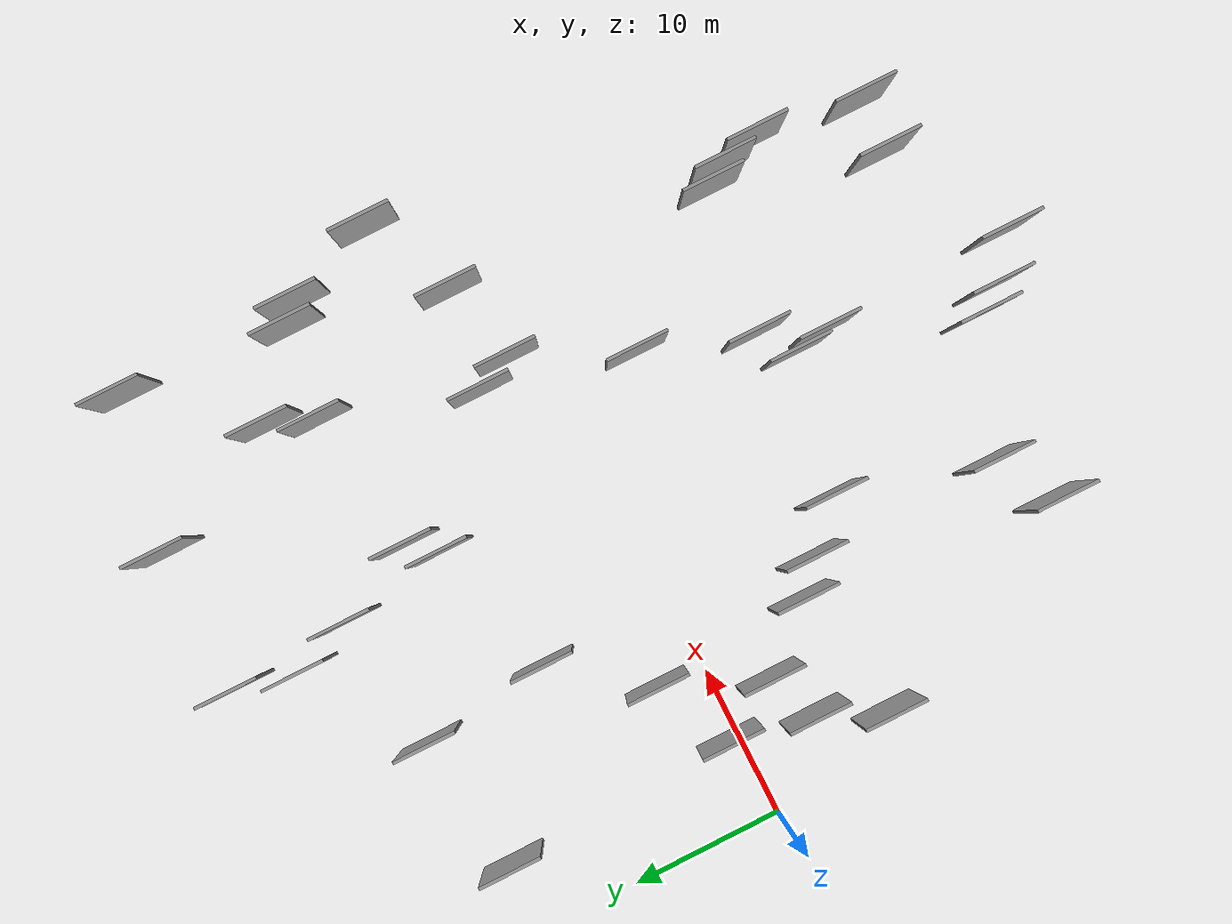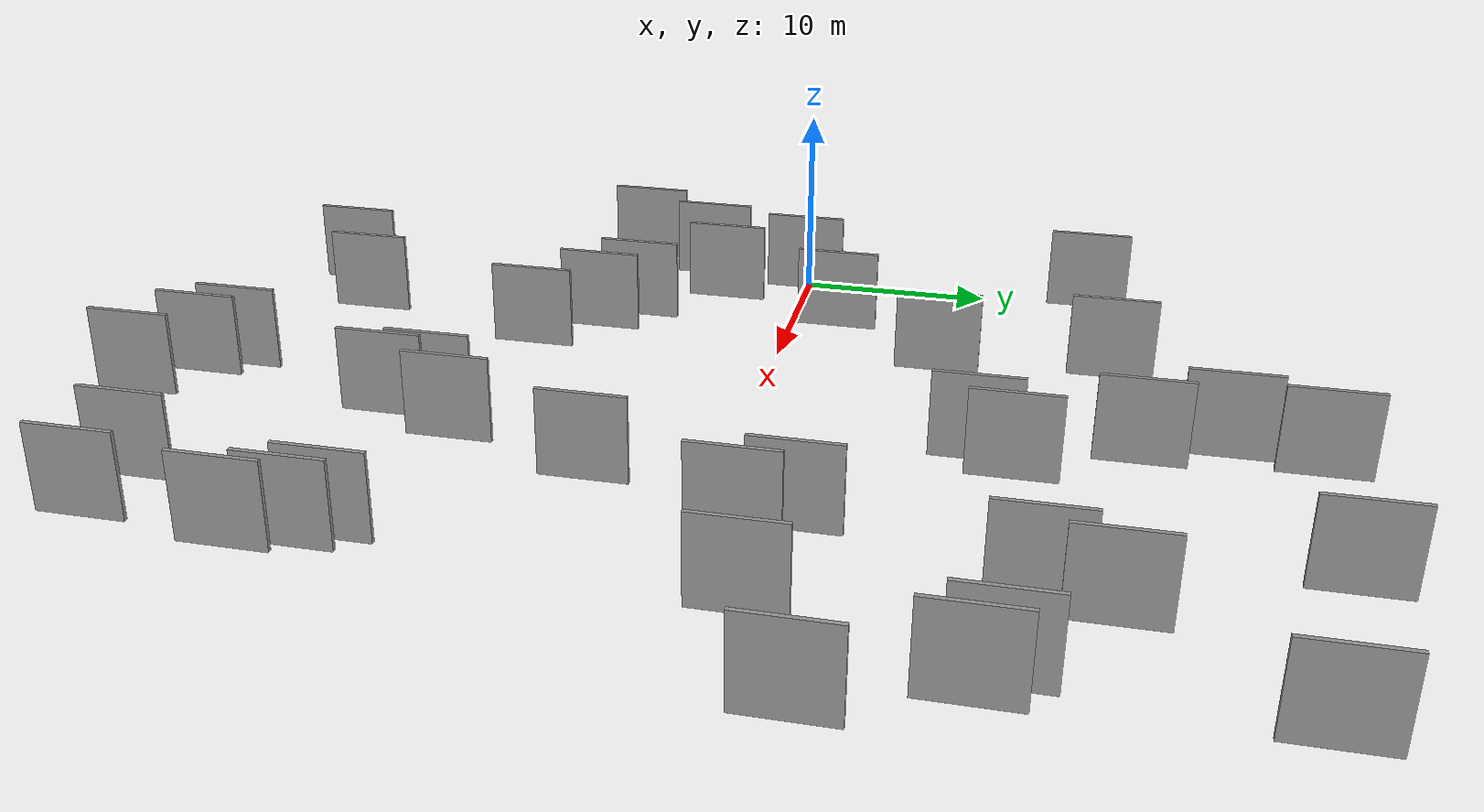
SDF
<sdf version="1.6">
 <world name="default">
  <scene>
   <sky><clouds><speed>12</speed></clouds></sky>
   <ambient>0.4 0.4 0.4 1</ambient>
   <background>0.7 0.7 0.7 1</background>
   <shadows>1</shadows>
  </scene>
  <gravity>0 0 -9.8066</gravity>
  <magnetic_field>6e-06 2.3e-05 -4.2e-05</magnetic_field>
  <physics default="0" name="default_physics" type="ode">
   <ode>
    <solver>
     <type>quick</type>
     <iters>10</iters>
     <sor>1.0</sor>
     <use_dynamic_moi_rescaling>0</use_dynamic_moi_rescaling>
    </solver>
    <constraints>
     <cfm>0</cfm>
     <erp>0.2</erp>
     <contact_max_correcting_vel>100</contact_max_correcting_vel>
     <contact_surface_layer>0.001</contact_surface_layer>
    </constraints>
   </ode>
   <max_step_size>0.004</max_step_size>
   <real_time_factor>1</real_time_factor>
   <real_time_update_rate>250</real_time_update_rate>
  </physics>
  <light name="sun" type="directional">
   <pose>0 0 10 0 0 0</pose>
   <diffuse>0.8 0.8 0.8 1</diffuse>
   <specular>0.2 0.2 0.2 1</specular>
   <attenuation>
    <range>1000</range>
    <constant>0.9</constant>
    <linear>0.01</linear>
    <quadratic>0.001</quadratic>
   </attenuation>
   <direction>-0.5 0.1 -0.9</direction>
  </light>
  <model name="grey_wall_1">
   <static>1</static>
   <pose>32.7581 2.3546 2.5 0.000000 0.000000 1.570796</pose>
   <link name="link">
    <pose>0 0 2.00 0 0 0</pose>
    <collision name="collision"><geometry><box><size>4.00 0.2 4.00</size></box></geometry></collision>
    <visual name="visual">
     <cast_shadows>0</cast_shadows>
     <geometry><box><size>4.00 0.2 4.00</size></box></geometry>
     <material>
      <script>
       <uri>model://grey_wall/materials/scripts</uri>
       <uri>model://grey_wall/materials/textures</uri>
       <name>vrc/grey_wall</name>
      </script>
     </material>
    </visual>
   </link>
  </model>
  <model name="grey_wall_2">
   <static>1</static>
   <pose>8.6562 -3.0491 2.5 0.000000 0.000000 1.570796</pose>
   <link name="link">
    <pose>0 0 2.00 0 0 0</pose>
    <collision name="collision"><geometry><box><size>4.00 0.2 4.00</size></box></geometry></collision>
    <visual name="visual">
     <cast_shadows>0</cast_shadows>
     <geometry><box><size>4.00 0.2 4.00</size></box></geometry>
     <material>
      <script>
       <uri>model://grey_wall/materials/scripts</uri>
       <uri>model://grey_wall/materials/textures</uri>
       <name>vrc/grey_wall</name>
      </script>
     </material>
    </visual>
   </link>
  </model>
  <model name="grey_wall_3">
   <static>1</static>
   <pose>24.1383 11.1364 2.5 0.000000 0.000000 1.570796</pose>
   <link name="link">
    <pose>0 0 2.00 0 0 0</pose>
    <collision name="collision"><geometry><box><size>4.00 0.2 4.00</size></box></geometry></collision>
    <visual name="visual">
     <cast_shadows>0</cast_shadows>
     <geometry><box><size>4.00 0.2 4.00</size></box></geometry>
     <material>
      <script>
       <uri>model://grey_wall/materials/scripts</uri>
       <uri>model://grey_wall/materials/textures</uri>
       <name>vrc/grey_wall</name>
      </script>
     </material>
    </visual>
   </link>
  </model>
  <model name="grey_wall_4">
   <static>1</static>
   <pose>25.6784 -15.3537 2.5 0.000000 0.000000 1.570796</pose>
   <link name="link">
    <pose>0 0 2.00 0 0 0</pose>
    <collision name="collision"><geometry><box><size>4.00 0.2 4.00</size></box></geometry></collision>
    <visual name="visual">
     <cast_shadows>0</cast_shadows>
     <geometry><box><size>4.00 0.2 4.00</size></box></geometry>
     <material>
      <script>
       <uri>model://grey_wall/materials/scripts</uri>
       <uri>model://grey_wall/materials/textures</uri>
       <name>vrc/grey_wall</name>
      </script>
     </material>
    </visual>
   </link>
  </model>
  <model name="grey_wall_5">
   <static>1</static>
   <pose>23.4787 -25.5595 2.5 0.000000 0.000000 1.570796</pose>
   <link name="link">
    <pose>0 0 2.00 0 0 0</pose>
    <collision name="collision"><geometry><box><size>4.00 0.2 4.00</size></box></geometry></collision>
    <visual name="visual">
     <cast_shadows>0</cast_shadows>
     <geometry><box><size>4.00 0.2 4.00</size></box></geometry>
     <material>
      <script>
       <uri>model://grey_wall/materials/scripts</uri>
       <uri>model://grey_wall/materials/textures</uri>
       <name>vrc/grey_wall</name>
      </script>
     </material>
    </visual>
   </link>
  </model>
  <model name="grey_wall_6">
   <static>1</static>
   <pose>37.9805 -16.8099 2.5 0.000000 0.000000 1.570796</pose>
   <link name="link">
    <pose>0 0 2.00 0 0 0</pose>
    <collision name="collision"><geometry><box><size>4.00 0.2 4.00</size></box></geometry></collision>
    <visual name="visual">
     <cast_shadows>0</cast_shadows>
     <geometry><box><size>4.00 0.2 4.00</size></box></geometry>
     <material>
      <script>
       <uri>model://grey_wall/materials/scripts</uri>
       <uri>model://grey_wall/materials/textures</uri>
       <name>vrc/grey_wall</name>
      </script>
     </material>
    </visual>
   </link>
  </model>
  <model name="grey_wall_7">
   <static>1</static>
   <pose>25.4953 12.7898 2.5 0.000000 0.000000 1.570796</pose>
   <link name="link">
    <pose>0 0 2.00 0 0 0</pose>
    <collision name="collision"><geometry><box><size>4.00 0.2 4.00</size></box></geometry></collision>
    <visual name="visual">
     <cast_shadows>0</cast_shadows>
     <geometry><box><size>4.00 0.2 4.00</size></box></geometry>
     <material>
      <script>
       <uri>model://grey_wall/materials/scripts</uri>
       <uri>model://grey_wall/materials/textures</uri>
       <name>vrc/grey_wall</name>
      </script>
     </material>
    </visual>
   </link>
  </model>
  <model name="grey_wall_8">
   <static>1</static>
   <pose>5.5047 -4.4223 2.5 0.000000 0.000000 1.570796</pose>
   <link name="link">
    <pose>0 0 2.00 0 0 0</pose>
    <collision name="collision"><geometry><box><size>4.00 0.2 4.00</size></box></geometry></collision>
    <visual name="visual">
     <cast_shadows>0</cast_shadows>
     <geometry><box><size>4.00 0.2 4.00</size></box></geometry>
     <material>
      <script>
       <uri>model://grey_wall/materials/scripts</uri>
       <uri>model://grey_wall/materials/textures</uri>
       <name>vrc/grey_wall</name>
      </script>
     </material>
    </visual>
   </link>
  </model>
  <model name="grey_wall_9">
   <static>1</static>
   <pose>6.4221 0.7579 2.5 0.000000 0.000000 1.570796</pose>
   <link name="link">
    <pose>0 0 2.00 0 0 0</pose>
    <collision name="collision"><geometry><box><size>4.00 0.2 4.00</size></box></geometry></collision>
    <visual name="visual">
     <cast_shadows>0</cast_shadows>
     <geometry><box><size>4.00 0.2 4.00</size></box></geometry>
     <material>
      <script>
       <uri>model://grey_wall/materials/scripts</uri>
       <uri>model://grey_wall/materials/textures</uri>
       <name>vrc/grey_wall</name>
      </script>
     </material>
    </visual>
   </link>
  </model>
  <model name="grey_wall_10">
   <static>1</static>
   <pose>27.3374 -11.5557 2.5 0.000000 0.000000 1.570796</pose>
   <link name="link">
    <pose>0 0 2.00 0 0 0</pose>
    <collision name="collision"><geometry><box><size>4.00 0.2 4.00</size></box></geometry></collision>
    <visual name="visual">
     <cast_shadows>0</cast_shadows>
     <geometry><box><size>4.00 0.2 4.00</size></box></geometry>
     <material>
      <script>
       <uri>model://grey_wall/materials/scripts</uri>
       <uri>model://grey_wall/materials/textures</uri>
       <name>vrc/grey_wall</name>
      </script>
     </material>
    </visual>
   </link>
  </model>
  <model name="grey_wall_11">
   <static>1</static>
   <pose>40.3491 13.2252 2.5 0.000000 0.000000 1.570796</pose>
   <link name="link">
    <pose>0 0 2.00 0 0 0</pose>
    <collision name="collision"><geometry><box><size>4.00 0.2 4.00</size></box></geometry></collision>
    <visual name="visual">
     <cast_shadows>0</cast_shadows>
     <geometry><box><size>4.00 0.2 4.00</size></box></geometry>
     <material>
      <script>
       <uri>model://grey_wall/materials/scripts</uri>
       <uri>model://grey_wall/materials/textures</uri>
       <name>vrc/grey_wall</name>
      </script>
     </material>
    </visual>
   </link>
  </model>
  <model name="grey_wall_12">
   <static>1</static>
   <pose>31.5262 25.8733 2.5 0.000000 0.000000 1.570796</pose>
   <link name="link">
    <pose>0 0 2.00 0 0 0</pose>
    <collision name="collision"><geometry><box><size>4.00 0.2 4.00</size></box></geometry></collision>
    <visual name="visual">
     <cast_shadows>0</cast_shadows>
     <geometry><box><size>4.00 0.2 4.00</size></box></geometry>
     <material>
      <script>
       <uri>model://grey_wall/materials/scripts</uri>
       <uri>model://grey_wall/materials/textures</uri>
       <name>vrc/grey_wall</name>
      </script>
     </material>
    </visual>
   </link>
  </model>
  <model name="grey_wall_13">
   <static>1</static>
   <pose>41.1789 23.9915 2.5 0.000000 0.000000 1.570796</pose>
   <link name="link">
    <pose>0 0 2.00 0 0 0</pose>
    <collision name="collision"><geometry><box><size>4.00 0.2 4.00</size></box></geometry></collision>
    <visual name="visual">
     <cast_shadows>0</cast_shadows>
     <geometry><box><size>4.00 0.2 4.00</size></box></geometry>
     <material>
      <script>
       <uri>model://grey_wall/materials/scripts</uri>
       <uri>model://grey_wall/materials/textures</uri>
       <name>vrc/grey_wall</name>
      </script>
     </material>
    </visual>
   </link>
  </model>
  <model name="grey_wall_14">
   <static>1</static>
   <pose>33.6461 -23.3354 2.5 0.000000 0.000000 1.570796</pose>
   <link name="link">
    <pose>0 0 2.00 0 0 0</pose>
    <collision name="collision"><geometry><box><size>4.00 0.2 4.00</size></box></geometry></collision>
    <visual name="visual">
     <cast_shadows>0</cast_shadows>
     <geometry><box><size>4.00 0.2 4.00</size></box></geometry>
     <material>
      <script>
       <uri>model://grey_wall/materials/scripts</uri>
       <uri>model://grey_wall/materials/textures</uri>
       <name>vrc/grey_wall</name>
      </script>
     </material>
    </visual>
   </link>
  </model>
  <model name="grey_wall_15">
   <static>1</static>
   <pose>13.9389 -8.5073 2.5 0.000000 0.000000 1.570796</pose>
   <link name="link">
    <pose>0 0 2.00 0 0 0</pose>
    <collision name="collision"><geometry><box><size>4.00 0.2 4.00</size></box></geometry></collision>
    <visual name="visual">
     <cast_shadows>0</cast_shadows>
     <geometry><box><size>4.00 0.2 4.00</size></box></geometry>
     <material>
      <script>
       <uri>model://grey_wall/materials/scripts</uri>
       <uri>model://grey_wall/materials/textures</uri>
       <name>vrc/grey_wall</name>
      </script>
     </material>
    </visual>
   </link>
  </model>
  <model name="grey_wall_16">
   <static>1</static>
   <pose>41.5530 12.2592 2.5 0.000000 0.000000 1.570796</pose>
   <link name="link">
    <pose>0 0 2.00 0 0 0</pose>
    <collision name="collision"><geometry><box><size>4.00 0.2 4.00</size></box></geometry></collision>
    <visual name="visual">
     <cast_shadows>0</cast_shadows>
     <geometry><box><size>4.00 0.2 4.00</size></box></geometry>
     <material>
      <script>
       <uri>model://grey_wall/materials/scripts</uri>
       <uri>model://grey_wall/materials/textures</uri>
       <name>vrc/grey_wall</name>
      </script>
     </material>
    </visual>
   </link>
  </model>
  <model name="grey_wall_17">
   <static>1</static>
   <pose>14.2192 -20.8193 2.5 0.000000 0.000000 1.570796</pose>
   <link name="link">
    <pose>0 0 2.00 0 0 0</pose>
    <collision name="collision"><geometry><box><size>4.00 0.2 4.00</size></box></geometry></collision>
    <visual name="visual">
     <cast_shadows>0</cast_shadows>
     <geometry><box><size>4.00 0.2 4.00</size></box></geometry>
     <material>
      <script>
       <uri>model://grey_wall/materials/scripts</uri>
       <uri>model://grey_wall/materials/textures</uri>
       <name>vrc/grey_wall</name>
      </script>
     </material>
    </visual>
   </link>
  </model>
  <model name="grey_wall_18">
   <static>1</static>
   <pose>35.6443 17.0689 2.5 0.000000 0.000000 1.570796</pose>
   <link name="link">
    <pose>0 0 2.00 0 0 0</pose>
    <collision name="collision"><geometry><box><size>4.00 0.2 4.00</size></box></geometry></collision>
    <visual name="visual">
     <cast_shadows>0</cast_shadows>
     <geometry><box><size>4.00 0.2 4.00</size></box></geometry>
     <material>
      <script>
       <uri>model://grey_wall/materials/scripts</uri>
       <uri>model://grey_wall/materials/textures</uri>
       <name>vrc/grey_wall</name>
      </script>
     </material>
    </visual>
   </link>
  </model>
  <model name="grey_wall_19">
   <static>1</static>
   <pose>14.3521 16.7993 2.5 0.000000 0.000000 1.570796</pose>
   <link name="link">
    <pose>0 0 2.00 0 0 0</pose>
    <collision name="collision"><geometry><box><size>4.00 0.2 4.00</size></box></geometry></collision>
    <visual name="visual">
     <cast_shadows>0</cast_shadows>
     <geometry><box><size>4.00 0.2 4.00</size></box></geometry>
     <material>
      <script>
       <uri>model://grey_wall/materials/scripts</uri>
       <uri>model://grey_wall/materials/textures</uri>
       <name>vrc/grey_wall</name>
      </script>
     </material>
    </visual>
   </link>
  </model>
  <model name="grey_wall_20">
   <static>1</static>
   <pose>21.4699 21.7366 2.5 0.000000 0.000000 1.570796</pose>
   <link name="link">
    <pose>0 0 2.00 0 0 0</pose>
    <collision name="collision"><geometry><box><size>4.00 0.2 4.00</size></box></geometry></collision>
    <visual name="visual">
     <cast_shadows>0</cast_shadows>
     <geometry><box><size>4.00 0.2 4.00</size></box></geometry>
     <material>
      <script>
       <uri>model://grey_wall/materials/scripts</uri>
       <uri>model://grey_wall/materials/textures</uri>
       <name>vrc/grey_wall</name>
      </script>
     </material>
    </visual>
   </link>
  </model>
  <model name="grey_wall_21">
   <static>1</static>
   <pose>36.4729 -13.1683 2.5 0.000000 0.000000 1.570796</pose>
   <link name="link">
    <pose>0 0 2.00 0 0 0</pose>
    <collision name="collision"><geometry><box><size>4.00 0.2 4.00</size></box></geometry></collision>
    <visual name="visual">
     <cast_shadows>0</cast_shadows>
     <geometry><box><size>4.00 0.2 4.00</size></box></geometry>
     <material>
      <script>
       <uri>model://grey_wall/materials/scripts</uri>
       <uri>model://grey_wall/materials/textures</uri>
       <name>vrc/grey_wall</name>
      </script>
     </material>
    </visual>
   </link>
  </model>
  <model name="grey_wall_22">
   <static>1</static>
   <pose>11.9929 -6.9453 2.5 0.000000 0.000000 1.570796</pose>
   <link name="link">
    <pose>0 0 2.00 0 0 0</pose>
    <collision name="collision"><geometry><box><size>4.00 0.2 4.00</size></box></geometry></collision>
    <visual name="visual">
     <cast_shadows>0</cast_shadows>
     <geometry><box><size>4.00 0.2 4.00</size></box></geometry>
     <material>
      <script>
       <uri>model://grey_wall/materials/scripts</uri>
       <uri>model://grey_wall/materials/textures</uri>
       <name>vrc/grey_wall</name>
      </script>
     </material>
    </visual>
   </link>
  </model>
  <model name="grey_wall_23">
   <static>1</static>
   <pose>37.3671 -14.4001 2.5 0.000000 0.000000 1.570796</pose>
   <link name="link">
    <pose>0 0 2.00 0 0 0</pose>
    <collision name="collision"><geometry><box><size>4.00 0.2 4.00</size></box></geometry></collision>
    <visual name="visual">
     <cast_shadows>0</cast_shadows>
     <geometry><box><size>4.00 0.2 4.00</size></box></geometry>
     <material>
      <script>
       <uri>model://grey_wall/materials/scripts</uri>
       <uri>model://grey_wall/materials/textures</uri>
       <name>vrc/grey_wall</name>
      </script>
     </material>
    </visual>
   </link>
  </model>
  <model name="grey_wall_24">
   <static>1</static>
   <pose>25.2666 -13.2184 2.5 0.000000 0.000000 1.570796</pose>
   <link name="link">
    <pose>0 0 2.00 0 0 0</pose>
    <collision name="collision"><geometry><box><size>4.00 0.2 4.00</size></box></geometry></collision>
    <visual name="visual">
     <cast_shadows>0</cast_shadows>
     <geometry><box><size>4.00 0.2 4.00</size></box></geometry>
     <material>
      <script>
       <uri>model://grey_wall/materials/scripts</uri>
       <uri>model://grey_wall/materials/textures</uri>
       <name>vrc/grey_wall</name>
      </script>
     </material>
    </visual>
   </link>
  </model>
  <model name="grey_wall_25">
   <static>1</static>
   <pose>29.6081 -4.7098 2.5 0.000000 0.000000 1.570796</pose>
   <link name="link">
    <pose>0 0 2.00 0 0 0</pose>
    <collision name="collision"><geometry><box><size>4.00 0.2 4.00</size></box></geometry></collision>
    <visual name="visual">
     <cast_shadows>0</cast_shadows>
     <geometry><box><size>4.00 0.2 4.00</size></box></geometry>
     <material>
      <script>
       <uri>model://grey_wall/materials/scripts</uri>
       <uri>model://grey_wall/materials/textures</uri>
       <name>vrc/grey_wall</name>
      </script>
     </material>
    </visual>
   </link>
  </model>
  <model name="grey_wall_26">
   <static>1</static>
   <pose>16.6935 -11.1715 2.5 0.000000 0.000000 1.570796</pose>
   <link name="link">
    <pose>0 0 2.00 0 0 0</pose>
    <collision name="collision"><geometry><box><size>4.00 0.2 4.00</size></box></geometry></collision>
    <visual name="visual">
     <cast_shadows>0</cast_shadows>
     <geometry><box><size>4.00 0.2 4.00</size></box></geometry>
     <material>
      <script>
       <uri>model://grey_wall/materials/scripts</uri>
       <uri>model://grey_wall/materials/textures</uri>
       <name>vrc/grey_wall</name>
      </script>
     </material>
    </visual>
   </link>
  </model>
  <model name="grey_wall_27">
   <static>1</static>
   <pose>22.9226 18.0525 2.5 0.000000 0.000000 1.570796</pose>
   <link name="link">
    <pose>0 0 2.00 0 0 0</pose>
    <collision name="collision"><geometry><box><size>4.00 0.2 4.00</size></box></geometry></collision>
    <visual name="visual">
     <cast_shadows>0</cast_shadows>
     <geometry><box><size>4.00 0.2 4.00</size></box></geometry>
     <material>
      <script>
       <uri>model://grey_wall/materials/scripts</uri>
       <uri>model://grey_wall/materials/textures</uri>
       <name>vrc/grey_wall</name>
      </script>
     </material>
    </visual>
   </link>
  </model>
  <model name="grey_wall_28">
   <static>1</static>
   <pose>22.3202 25.6336 2.5 0.000000 0.000000 1.570796</pose>
   <link name="link">
    <pose>0 0 2.00 0 0 0</pose>
    <collision name="collision"><geometry><box><size>4.00 0.2 4.00</size></box></geometry></collision>
    <visual name="visual">
     <cast_shadows>0</cast_shadows>
     <geometry><box><size>4.00 0.2 4.00</size></box></geometry>
     <material>
      <script>
       <uri>model://grey_wall/materials/scripts</uri>
       <uri>model://grey_wall/materials/textures</uri>
       <name>vrc/grey_wall</name>
      </script>
     </material>
    </visual>
   </link>
  </model>
  <model name="grey_wall_29">
   <static>1</static>
   <pose>22.2831 -24.1253 2.5 0.000000 0.000000 1.570796</pose>
   <link name="link">
    <pose>0 0 2.00 0 0 0</pose>
    <collision name="collision"><geometry><box><size>4.00 0.2 4.00</size></box></geometry></collision>
    <visual name="visual">
     <cast_shadows>0</cast_shadows>
     <geometry><box><size>4.00 0.2 4.00</size></box></geometry>
     <material>
      <script>
       <uri>model://grey_wall/materials/scripts</uri>
       <uri>model://grey_wall/materials/textures</uri>
       <name>vrc/grey_wall</name>
      </script>
     </material>
    </visual>
   </link>
  </model>
  <model name="grey_wall_30">
   <static>1</static>
   <pose>11.2191 3.2011 2.5 0.000000 0.000000 1.570796</pose>
   <link name="link">
    <pose>0 0 2.00 0 0 0</pose>
    <collision name="collision"><geometry><box><size>4.00 0.2 4.00</size></box></geometry></collision>
    <visual name="visual">
     <cast_shadows>0</cast_shadows>
     <geometry><box><size>4.00 0.2 4.00</size></box></geometry>
     <material>
      <script>
       <uri>model://grey_wall/materials/scripts</uri>
       <uri>model://grey_wall/materials/textures</uri>
       <name>vrc/grey_wall</name>
      </script>
     </material>
    </visual>
   </link>
  </model>
  <model name="grey_wall_31">
   <static>1</static>
   <pose>43.7247 6.4415 2.5 0.000000 0.000000 1.570796</pose>
   <link name="link">
    <pose>0 0 2.00 0 0 0</pose>
    <collision name="collision"><geometry><box><size>4.00 0.2 4.00</size></box></geometry></collision>
    <visual name="visual">
     <cast_shadows>0</cast_shadows>
     <geometry><box><size>4.00 0.2 4.00</size></box></geometry>
     <material>
      <script>
       <uri>model://grey_wall/materials/scripts</uri>
       <uri>model://grey_wall/materials/textures</uri>
       <name>vrc/grey_wall</name>
      </script>
     </material>
    </visual>
   </link>
  </model>
  <model name="grey_wall_32">
   <static>1</static>
   <pose>37.9896 3.6165 2.5 0.000000 0.000000 1.570796</pose>
   <link name="link">
    <pose>0 0 2.00 0 0 0</pose>
    <collision name="collision"><geometry><box><size>4.00 0.2 4.00</size></box></geometry></collision>
    <visual name="visual">
     <cast_shadows>0</cast_shadows>
     <geometry><box><size>4.00 0.2 4.00</size></box></geometry>
     <material>
      <script>
       <uri>model://grey_wall/materials/scripts</uri>
       <uri>model://grey_wall/materials/textures</uri>
       <name>vrc/grey_wall</name>
      </script>
     </material>
    </visual>
   </link>
  </model>
  <model name="grey_wall_33">
   <static>1</static>
   <pose>26.1273 -27.4954 2.5 0.000000 0.000000 1.570796</pose>
   <link name="link">
    <pose>0 0 2.00 0 0 0</pose>
    <collision name="collision"><geometry><box><size>4.00 0.2 4.00</size></box></geometry></collision>
    <visual name="visual">
     <cast_shadows>0</cast_shadows>
     <geometry><box><size>4.00 0.2 4.00</size></box></geometry>
     <material>
      <script>
       <uri>model://grey_wall/materials/scripts</uri>
       <uri>model://grey_wall/materials/textures</uri>
       <name>vrc/grey_wall</name>
      </script>
     </material>
    </visual>
   </link>
  </model>
  <model name="grey_wall_34">
   <static>1</static>
   <pose>15.4171 8.6782 2.5 0.000000 0.000000 1.570796</pose>
   <link name="link">
    <pose>0 0 2.00 0 0 0</pose>
    <collision name="collision"><geometry><box><size>4.00 0.2 4.00</size></box></geometry></collision>
    <visual name="visual">
     <cast_shadows>0</cast_shadows>
     <geometry><box><size>4.00 0.2 4.00</size></box></geometry>
     <material>
      <script>
       <uri>model://grey_wall/materials/scripts</uri>
       <uri>model://grey_wall/materials/textures</uri>
       <name>vrc/grey_wall</name>
      </script>
     </material>
    </visual>
   </link>
  </model>
  <model name="grey_wall_35">
   <static>1</static>
   <pose>34.5638 14.2157 2.5 0.000000 0.000000 1.570796</pose>
   <link name="link">
    <pose>0 0 2.00 0 0 0</pose>
    <collision name="collision"><geometry><box><size>4.00 0.2 4.00</size></box></geometry></collision>
    <visual name="visual">
     <cast_shadows>0</cast_shadows>
     <geometry><box><size>4.00 0.2 4.00</size></box></geometry>
     <material>
      <script>
       <uri>model://grey_wall/materials/scripts</uri>
       <uri>model://grey_wall/materials/textures</uri>
       <name>vrc/grey_wall</name>
      </script>
     </material>
    </visual>
   </link>
  </model>
  <model name="grey_wall_36">
   <static>1</static>
   <pose>5.6922 15.5923 2.5 0.000000 0.000000 1.570796</pose>
   <link name="link">
    <pose>0 0 2.00 0 0 0</pose>
    <collision name="collision"><geometry><box><size>4.00 0.2 4.00</size></box></geometry></collision>
    <visual name="visual">
     <cast_shadows>0</cast_shadows>
     <geometry><box><size>4.00 0.2 4.00</size></box></geometry>
     <material>
      <script>
       <uri>model://grey_wall/materials/scripts</uri>
       <uri>model://grey_wall/materials/textures</uri>
       <name>vrc/grey_wall</name>
      </script>
     </material>
    </visual>
   </link>
  </model>
  <model name="grey_wall_37">
   <static>1</static>
   <pose>3.7152 -8.4283 2.5 0.000000 0.000000 1.570796</pose>
   <link name="link">
    <pose>0 0 2.00 0 0 0</pose>
    <collision name="collision"><geometry><box><size>4.00 0.2 4.00</size></box></geometry></collision>
    <visual name="visual">
     <cast_shadows>0</cast_shadows>
     <geometry><box><size>4.00 0.2 4.00</size></box></geometry>
     <material>
      <script>
       <uri>model://grey_wall/materials/scripts</uri>
       <uri>model://grey_wall/materials/textures</uri>
       <name>vrc/grey_wall</name>
      </script>
     </material>
    </visual>
   </link>
  </model>
  <model name="grey_wall_38">
   <static>1</static>
   <pose>31.7195 4.6246 2.5 0.000000 0.000000 1.570796</pose>
   <link name="link">
    <pose>0 0 2.00 0 0 0</pose>
    <collision name="collision"><geometry><box><size>4.00 0.2 4.00</size></box></geometry></collision>
    <visual name="visual">
     <cast_shadows>0</cast_shadows>
     <geometry><box><size>4.00 0.2 4.00</size></box></geometry>
     <material>
      <script>
       <uri>model://grey_wall/materials/scripts</uri>
       <uri>model://grey_wall/materials/textures</uri>
       <name>vrc/grey_wall</name>
      </script>
     </material>
    </visual>
   </link>
  </model>
  <model name="grey_wall_39">
   <static>1</static>
   <pose>37.1254 -23.5132 2.5 0.000000 0.000000 1.570796</pose>
   <link name="link">
    <pose>0 0 2.00 0 0 0</pose>
    <collision name="collision"><geometry><box><size>4.00 0.2 4.00</size></box></geometry></collision>
    <visual name="visual">
     <cast_shadows>0</cast_shadows>
     <geometry><box><size>4.00 0.2 4.00</size></box></geometry>
     <material>
      <script>
       <uri>model://grey_wall/materials/scripts</uri>
       <uri>model://grey_wall/materials/textures</uri>
       <name>vrc/grey_wall</name>
      </script>
     </material>
    </visual>
   </link>
  </model>
  <model name="grey_wall_40">
   <static>1</static>
   <pose>10.5223 -23.0525 2.5 0.000000 0.000000 1.570796</pose>
   <link name="link">
    <pose>0 0 2.00 0 0 0</pose>
    <collision name="collision"><geometry><box><size>4.00 0.2 4.00</size></box></geometry></collision>
    <visual name="visual">
     <cast_shadows>0</cast_shadows>
     <geometry><box><size>4.00 0.2 4.00</size></box></geometry>
     <material>
      <script>
       <uri>model://grey_wall/materials/scripts</uri>
       <uri>model://grey_wall/materials/textures</uri>
       <name>vrc/grey_wall</name>
      </script>
     </material>
    </visual>
   </link>
  </model>
 </world>
</sdf>
